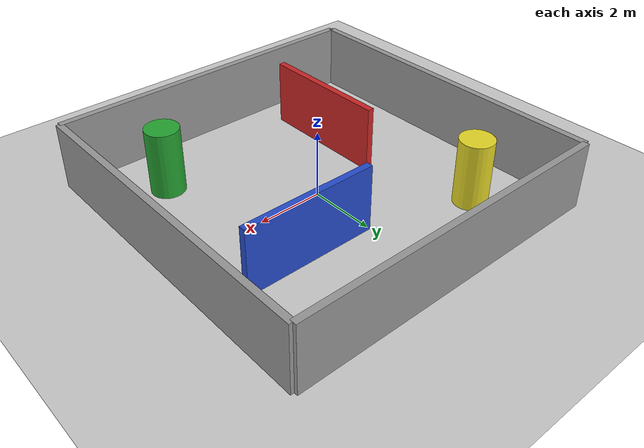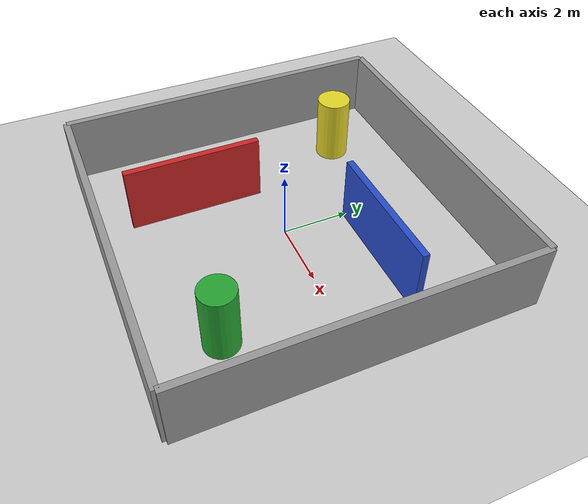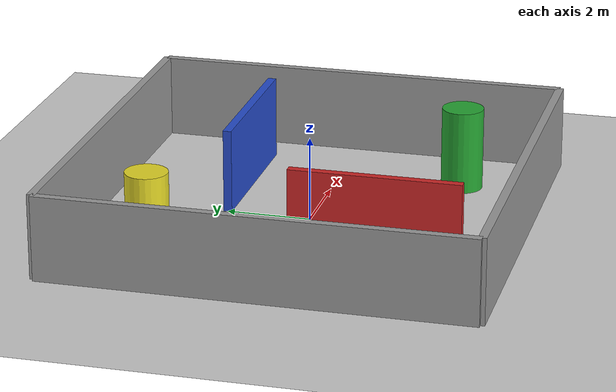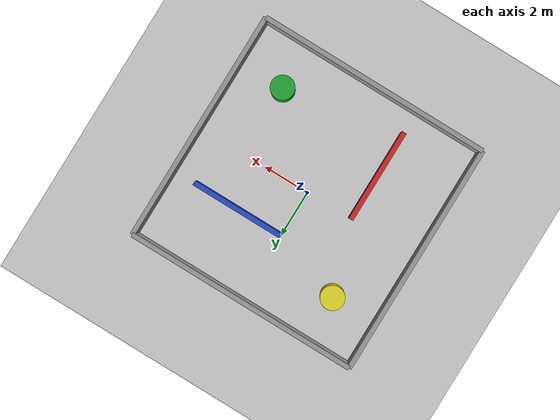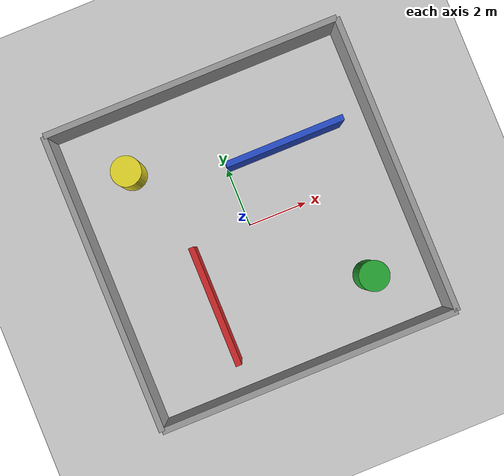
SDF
<?xml version="1.0"?>
<sdf version="1.6">
  <world name="mini_warehouse">

    <include><uri>model://sun</uri></include>
    <include><uri>model://ground_plane</uri></include>

    <model name='wall_north'>
      <static>1</static> <pose>0 5 1 0 0 0</pose>
      <link name='link'>
        <collision name='col'><geometry><box><size>10 0.2 2</size></box></geometry></collision>
        <visual name='vis'><geometry><box><size>10 0.2 2</size></box></geometry><material><script><name>Gazebo/Grey</name></script></material></visual>
      </link>
    </model>

    <model name='wall_south'>
      <static>1</static>
      <pose>0 -5 1 0 0 0</pose>
      <link name='link'>
        <collision name='col'><geometry><box><size>10 0.2 2</size></box></geometry></collision>
        <visual name='vis'><geometry><box><size>10 0.2 2</size></box></geometry><material><script><name>Gazebo/Grey</name></script></material></visual>
      </link>
    </model>

    <model name='wall_east'>
      <static>1</static>
      <pose>5 0 1 0 0 0</pose>
      <link name='link'>
        <collision name='col'><geometry><box><size>0.2 10 2</size></box></geometry></collision>
        <visual name='vis'><geometry><box><size>0.2 10 2</size></box></geometry><material><script><name>Gazebo/Grey</name></script></material></visual>
      </link>
    </model>

    <model name='wall_west'>
      <static>1</static>
      <pose>-5 0 1 0 0 0</pose>
      <link name='link'>
        <collision name='col'><geometry><box><size>0.2 10 2</size></box></geometry></collision>
        <visual name='vis'><geometry><box><size>0.2 10 2</size></box></geometry><material><script><name>Gazebo/Grey</name></script></material></visual>
      </link>
    </model>

    <model name='partition_blue'>
      <static>1</static>
      <pose>2 2 1 0 0 0</pose>
      <link name='link'>
        <collision name='col'><geometry><box><size>4 0.2 2</size></box></geometry></collision>
        <visual name='vis'><geometry><box><size>4 0.2 2</size></box></geometry><material><script><name>Gazebo/Blue</name></script></material></visual>
      </link>
    </model>

    <model name='partition_red'>
      <static>1</static>
      <pose>-2 -2 1 0 0 0</pose>
      <link name='link'>
        <collision name='col'><geometry><box><size>0.2 4 2</size></box></geometry></collision>
        <visual name='vis'><geometry><box><size>0.2 4 2</size></box></geometry><material><script><name>Gazebo/Red</name></script></material></visual>
      </link>
    </model>

    <model name='pillar_yellow'>
      <static>1</static>
      <pose>-3 3 1 0 0 0</pose>
      <link name='link'>
        <collision name='col'><geometry><cylinder><radius>0.5</radius><length>2</length></cylinder></geometry></collision>
        <visual name='vis'><geometry><cylinder><radius>0.5</radius><length>2</length></cylinder></geometry><material><script><name>Gazebo/Yellow</name></script></material></visual>
      </link>
    </model>

    <model name='pillar_green'>
      <static>1</static>
      <pose>3 -3 1 0 0 0</pose>
      <link name='link'>
        <collision name='col'><geometry><cylinder><radius>0.5</radius><length>2</length></cylinder></geometry></collision>
        <visual name='vis'><geometry><cylinder><radius>0.5</radius><length>2</length></cylinder></geometry><material><script><name>Gazebo/Green</name></script></material></visual>
      </link>
    </model>

  </world>
</sdf>
